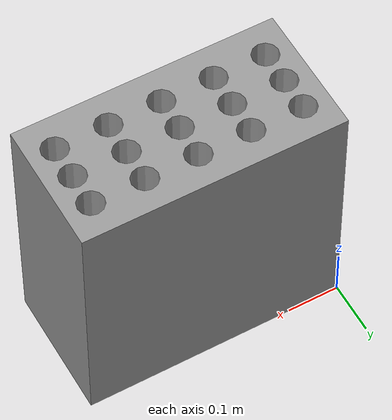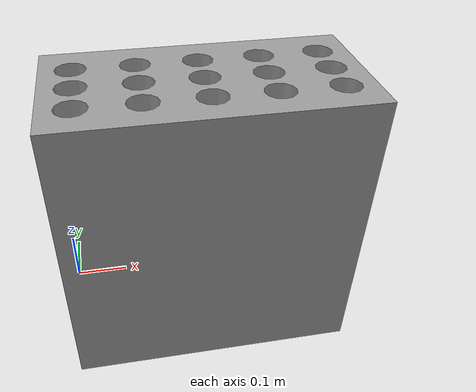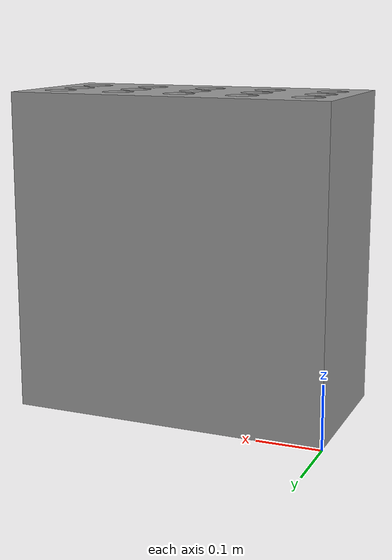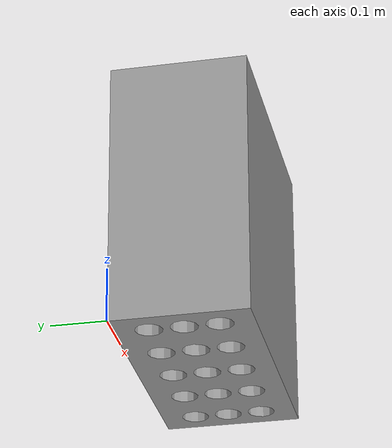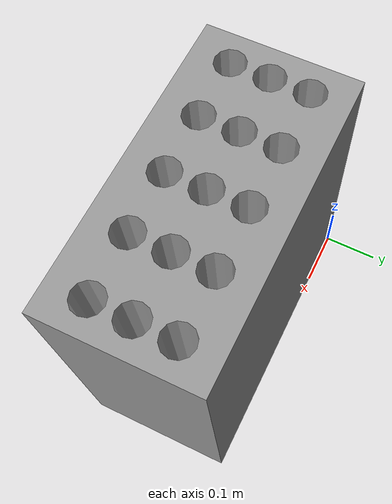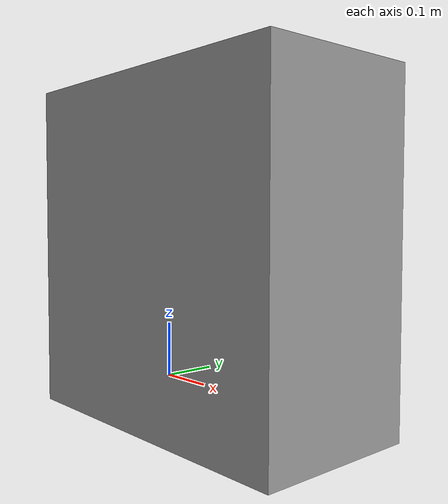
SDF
<?xml version="1.0"?>
<sdf version="1.4">
  <model name="Hole Table">
    <static>true</static>
    <link name="link">
      <inertial>
        <pose>0.25 0.125 0.25 0 0 0</pose>
        <mass>50</mass>
        <inertia>
          <ixx>0.5</ixx>
          <ixy>0</ixy>
          <ixz>0</ixz>
          <iyy>0.5</iyy>
          <iyz>0</iyz>
          <izz>0.5</izz>
        </inertia>
      </inertial>
      <collision name="table_collision">
        <geometry>
          <mesh>
            <scale>1.0 1.0 1.0</scale>
            <uri>model://hole_table/meshes/hole_part.dae</uri>
          </mesh>
        </geometry>
      </collision>
      <visual name="table_visual">
        <geometry>
          <mesh>
            <scale>1.0 1.0 1</scale>
            <uri>model://hole_table/meshes/hole_part.dae</uri>
          </mesh>
        </geometry>
        <material>
          <script>
            <uri>file://media/materials/scripts/gazebo.material</uri>
            <name>Gazebo/Grey</name>
          </script>
        </material>
      </visual>
    </link>
  </model>
</sdf>
